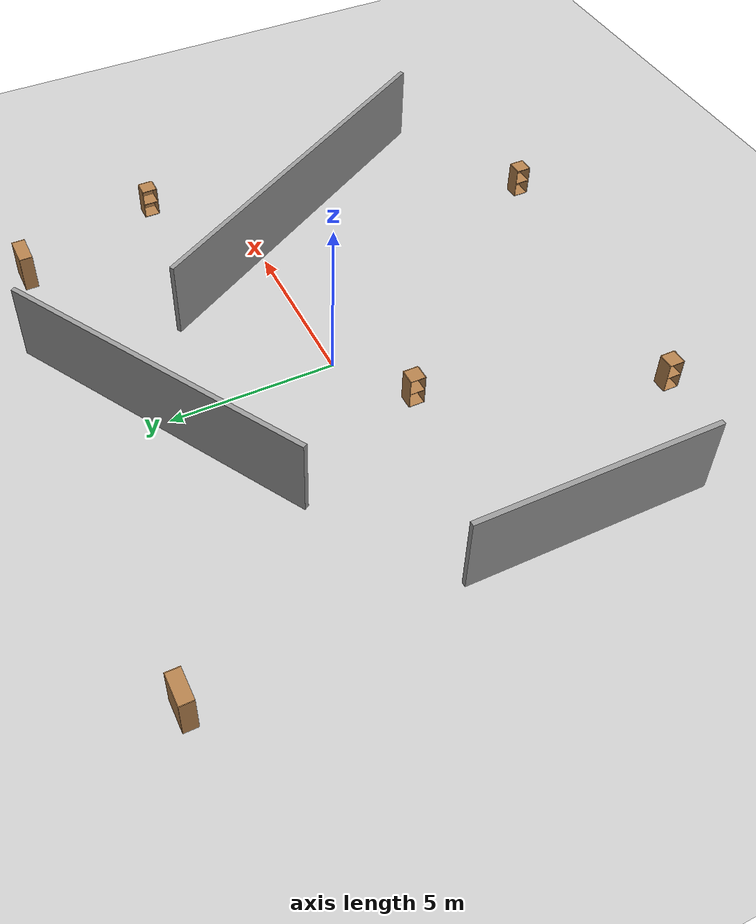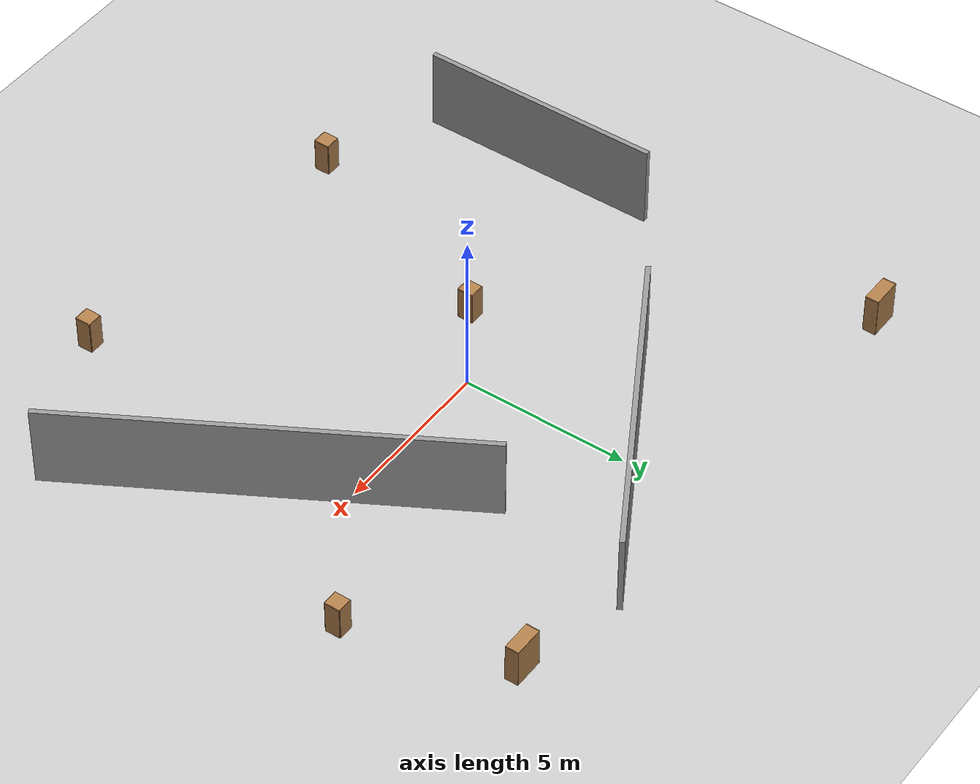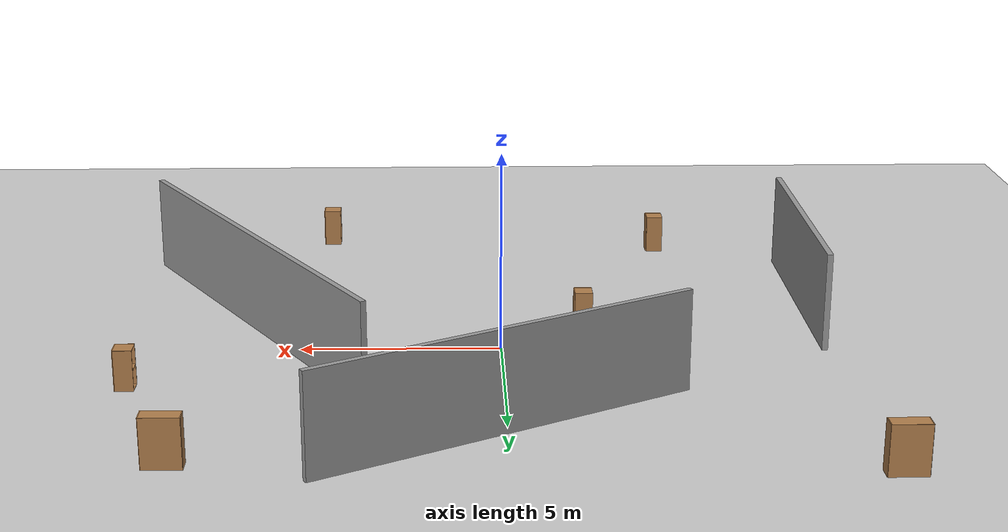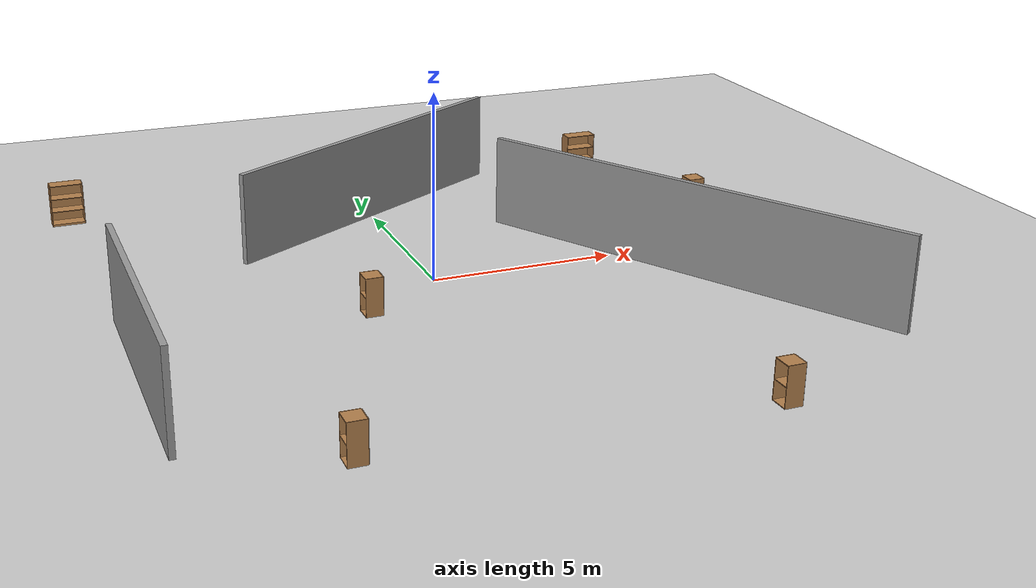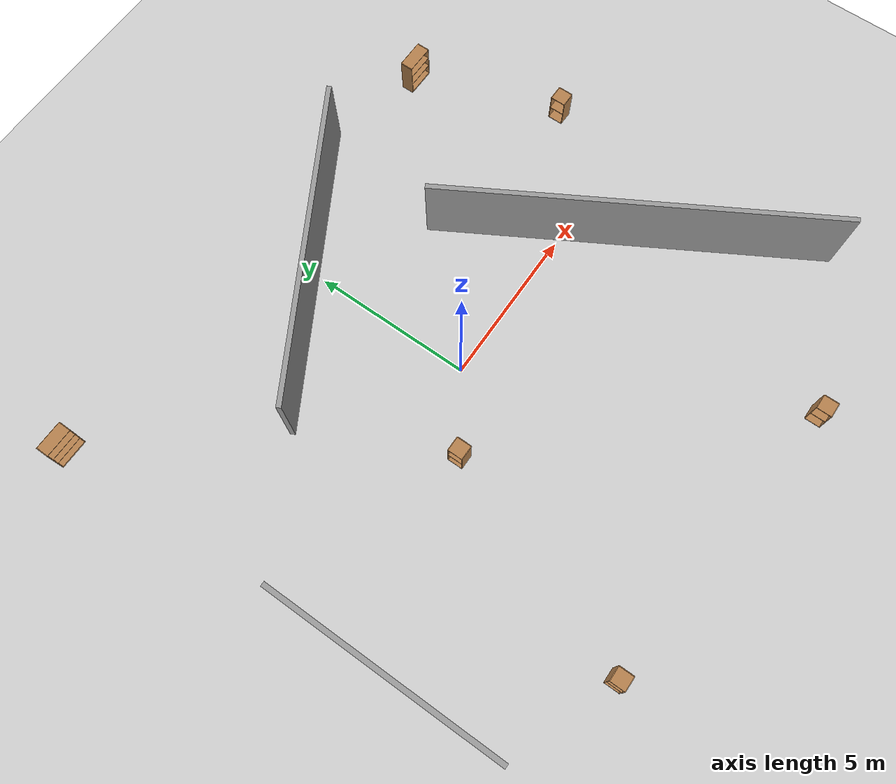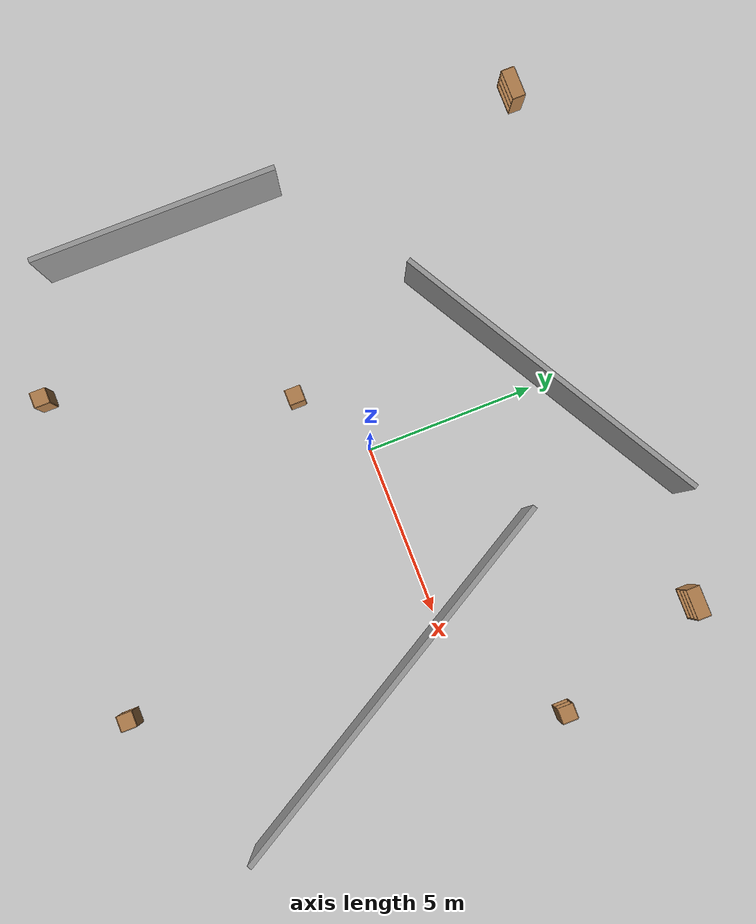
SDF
<sdf version="1.6">
 <world name="default">
  <light name="sun" type="directional">
   <pose>0 0 10 0 -0 0</pose>
   <diffuse>0.8 0.8 0.8 1</diffuse>
   <specular>0.2 0.2 0.2 1</specular>
   <attenuation>
    <range>1000</range>
    <constant>0.9</constant>
    <linear>0.01</linear>
    <quadratic>0.001</quadratic>
   </attenuation>
   <direction>-0.5 0.1 -0.9</direction>
  </light>
  <model name="ground_plane">
   <static>1</static>
   <link name="link">
    <collision name="collision">
     <geometry><plane><normal>0 0 1</normal><size>100 100</size></plane></geometry>
     <surface><friction><ode><mu>100</mu><mu2>50</mu2></ode></friction></surface>
    </collision>
    <visual name="visual">
     <cast_shadows>0</cast_shadows>
     <geometry><plane><normal>0 0 1</normal><size>100 100</size></plane></geometry>
     <material>
      <script><uri>file://media/materials/scripts/gazebo.material</uri><name>Gazebo/Grey</name></script>
     </material>
    </visual>
   </link>
  </model>
  <gravity>0 0 -9.8</gravity>
  <magnetic_field>6e-06 2.3e-05 -4.2e-05</magnetic_field>
  <atmosphere type="adiabatic"/>
  <physics name="default_physics" default="0" type="ode">
   <max_step_size>0.001</max_step_size>
   <real_time_factor>1</real_time_factor>
   <real_time_update_rate>1000</real_time_update_rate>
  </physics>
  <scene><ambient>0.4 0.4 0.4 1</ambient><background>0.7 0.7 0.7 1</background><shadows>1</shadows></scene>
  <audio><device>default</device></audio>
  <spherical_coordinates>
   <surface_model>EARTH_WGS84</surface_model>
   <latitude_deg>0</latitude_deg>
   <longitude_deg>0</longitude_deg>
   <elevation>0</elevation>
   <heading_deg>0</heading_deg>
  </spherical_coordinates>
  <model name="room7">
   <pose>0.642424 0.37952 0 0 -0 0</pose>
   <link name="Wall_0">
    <collision name="Wall_0_Collision">
     <geometry><box><size>10 0.15 2.5</size></box></geometry>
     <pose>0 0 1.25 0 -0 0</pose>
    </collision>
    <visual name="Wall_0_Visual">
     <pose>0 0 1.25 0 -0 0</pose>
     <geometry><box><size>10 0.15 2.5</size></box></geometry>
     <material>
      <script><uri>file://media/materials/scripts/gazebo.material</uri><name>Gazebo/Grey</name></script>
      <ambient>1 1 1 1</ambient>
     </material>
     <meta><layer>0</layer></meta>
    </visual>
    <pose>-0.625696 4.92862 0 0 -0 0.523599</pose>
   </link>
   <link name="Wall_2">
    <collision name="Wall_2_Collision">
     <geometry><box><size>7.25 0.15 2.5</size></box></geometry>
     <pose>0 0 1.25 0 -0 0</pose>
    </collision>
    <visual name="Wall_2_Visual">
     <pose>0 0 1.25 0 -0 0</pose>
     <geometry><box><size>7.25 0.15 2.5</size></box></geometry>
     <material>
      <script><uri>file://media/materials/scripts/gazebo.material</uri><name>Gazebo/Grey</name></script>
      <ambient>1 1 1 1</ambient>
     </material>
     <meta><layer>0</layer></meta>
    </visual>
    <pose>-8.7229 -3.70024 0 0 -0 -1.5708</pose>
   </link>
   <link name="Wall_5">
    <collision name="Wall_5_Collision">
     <geometry><box><size>12.25 0.15 2.5</size></box></geometry>
     <pose>0 0 1.25 0 -0 0</pose>
    </collision>
    <visual name="Wall_5_Visual">
     <pose>0 0 1.25 0 -0 0</pose>
     <geometry><box><size>12.25 0.15 2.5</size></box></geometry>
     <material>
      <script><uri>file://media/materials/scripts/gazebo.material</uri><name>Gazebo/Grey</name></script>
      <ambient>1 1 1 1</ambient>
     </material>
     <meta><layer>0</layer></meta>
    </visual>
    <pose>5.67045 -2.15167 0 0 -0 2.0944</pose>
   </link>
   <static>1</static>
  </model>
  <model name="bookshelf">
   <static>1</static>
   <link name="link">
    <inertial><mass>1</mass></inertial>
    <collision name="back">
     <pose>0 0.005 0.6 0 -0 0</pose>
     <geometry><box><size>0.9 0.01 1.2</size></box></geometry>
    </collision>
    <visual name="visual1">
     <pose>0 0.005 0.6 0 -0 0</pose>
     <geometry><box><size>0.9 0.01 1.2</size></box></geometry>
     <material>
      <script><uri>file://media/materials/scripts/gazebo.material</uri><name>Gazebo/Wood</name></script>
     </material>
    </visual>
    <collision name="left_side">
     <pose>0.45 -0.195 0.6 0 -0 0</pose>
     <geometry><box><size>0.02 0.4 1.2</size></box></geometry>
    </collision>
    <visual name="visual2">
     <pose>0.45 -0.195 0.6 0 -0 0</pose>
     <geometry><box><size>0.02 0.4 1.2</size></box></geometry>
     <material>
      <script><uri>file://media/materials/scripts/gazebo.material</uri><name>Gazebo/Wood</name></script>
     </material>
    </visual>
    <collision name="right_side">
     <pose>-0.45 -0.195 0.6 0 -0 0</pose>
     <geometry><box><size>0.02 0.4 1.2</size></box></geometry>
    </collision>
    <visual name="visual3">
     <pose>-0.45 -0.195 0.6 0 -0 0</pose>
     <geometry><box><size>0.02 0.4 1.2</size></box></geometry>
     <material>
      <script><uri>file://media/materials/scripts/gazebo.material</uri><name>Gazebo/Wood</name></script>
     </material>
    </visual>
    <collision name="bottom">
     <pose>0 -0.195 0.03 0 -0 0</pose>
     <geometry><box><size>0.88 0.4 0.06</size></box></geometry>
    </collision>
    <visual name="visual4">
     <pose>0 -0.195 0.03 0 -0 0</pose>
     <geometry><box><size>0.88 0.4 0.06</size></box></geometry>
     <material>
      <script><uri>file://media/materials/scripts/gazebo.material</uri><name>Gazebo/Wood</name></script>
     </material>
    </visual>
    <collision name="top">
     <pose>0 -0.195 1.19 0 -0 0</pose>
     <geometry><box><size>0.88 0.4 0.02</size></box></geometry>
    </collision>
    <visual name="visual5">
     <pose>0 -0.195 1.19 0 -0 0</pose>
     <geometry><box><size>0.88 0.4 0.02</size></box></geometry>
     <material>
      <script><uri>file://media/materials/scripts/gazebo.material</uri><name>Gazebo/Wood</name></script>
     </material>
    </visual>
    <collision name="low_shelf">
     <pose>0 -0.195 0.43 0 -0 0</pose>
     <geometry><box><size>0.88 0.4 0.02</size></box></geometry>
    </collision>
    <visual name="visual6">
     <pose>0 -0.195 0.43 0 -0 0</pose>
     <geometry><box><size>0.88 0.4 0.02</size></box></geometry>
     <material>
      <script><uri>file://media/materials/scripts/gazebo.material</uri><name>Gazebo/Wood</name></script>
     </material>
    </visual>
    <collision name="high_shelf">
     <pose>0 -0.195 0.8 0 -0 0</pose>
     <geometry><box><size>0.88 0.4 0.02</size></box></geometry>
    </collision>
    <visual name="visual7">
     <pose>0 -0.195 0.8 0 -0 0</pose>
     <geometry><box><size>0.88 0.4 0.02</size></box></geometry>
     <material>
      <script><uri>file://media/materials/scripts/gazebo.material</uri><name>Gazebo/Wood</name></script>
     </material>
    </visual>
   </link>
   <pose>7.41706 7.16134 0 0 -0 0</pose>
  </model>
  <model name="bookshelf_0">
   <static>1</static>
   <link name="link">
    <inertial><mass>1</mass></inertial>
    <collision name="back">
     <pose>0 0.005 0.6 0 -0 0</pose>
     <geometry><box><size>0.9 0.01 1.2</size></box></geometry>
    </collision>
    <visual name="visual1">
     <pose>0 0.005 0.6 0 -0 0</pose>
     <geometry><box><size>0.9 0.01 1.2</size></box></geometry>
     <material>
      <script><uri>file://media/materials/scripts/gazebo.material</uri><name>Gazebo/Wood</name></script>
     </material>
    </visual>
    <collision name="left_side">
     <pose>0.45 -0.195 0.6 0 -0 0</pose>
     <geometry><box><size>0.02 0.4 1.2</size></box></geometry>
    </collision>
    <visual name="visual2">
     <pose>0.45 -0.195 0.6 0 -0 0</pose>
     <geometry><box><size>0.02 0.4 1.2</size></box></geometry>
     <material>
      <script><uri>file://media/materials/scripts/gazebo.material</uri><name>Gazebo/Wood</name></script>
     </material>
    </visual>
    <collision name="right_side">
     <pose>-0.45 -0.195 0.6 0 -0 0</pose>
     <geometry><box><size>0.02 0.4 1.2</size></box></geometry>
    </collision>
    <visual name="visual3">
     <pose>-0.45 -0.195 0.6 0 -0 0</pose>
     <geometry><box><size>0.02 0.4 1.2</size></box></geometry>
     <material>
      <script><uri>file://media/materials/scripts/gazebo.material</uri><name>Gazebo/Wood</name></script>
     </material>
    </visual>
    <collision name="bottom">
     <pose>0 -0.195 0.03 0 -0 0</pose>
     <geometry><box><size>0.88 0.4 0.06</size></box></geometry>
    </collision>
    <visual name="visual4">
     <pose>0 -0.195 0.03 0 -0 0</pose>
     <geometry><box><size>0.88 0.4 0.06</size></box></geometry>
     <material>
      <script><uri>file://media/materials/scripts/gazebo.material</uri><name>Gazebo/Wood</name></script>
     </material>
    </visual>
    <collision name="top">
     <pose>0 -0.195 1.19 0 -0 0</pose>
     <geometry><box><size>0.88 0.4 0.02</size></box></geometry>
    </collision>
    <visual name="visual5">
     <pose>0 -0.195 1.19 0 -0 0</pose>
     <geometry><box><size>0.88 0.4 0.02</size></box></geometry>
     <material>
      <script><uri>file://media/materials/scripts/gazebo.material</uri><name>Gazebo/Wood</name></script>
     </material>
    </visual>
    <collision name="low_shelf">
     <pose>0 -0.195 0.43 0 -0 0</pose>
     <geometry><box><size>0.88 0.4 0.02</size></box></geometry>
    </collision>
    <visual name="visual6">
     <pose>0 -0.195 0.43 0 -0 0</pose>
     <geometry><box><size>0.88 0.4 0.02</size></box></geometry>
     <material>
      <script><uri>file://media/materials/scripts/gazebo.material</uri><name>Gazebo/Wood</name></script>
     </material>
    </visual>
    <collision name="high_shelf">
     <pose>0 -0.195 0.8 0 -0 0</pose>
     <geometry><box><size>0.88 0.4 0.02</size></box></geometry>
    </collision>
    <visual name="visual7">
     <pose>0 -0.195 0.8 0 -0 0</pose>
     <geometry><box><size>0.88 0.4 0.02</size></box></geometry>
     <material>
      <script><uri>file://media/materials/scripts/gazebo.material</uri><name>Gazebo/Wood</name></script>
     </material>
    </visual>
   </link>
   <pose>-8.32761 7.88049 0 0 -0 0</pose>
  </model>
  <model name="cabinet">
   <static>1</static>
   <link name="cabinet_bottom_plate">
    <inertial>
     <pose>0 0 -1 0 -0 0</pose>
     <inertia><ixx>2.05</ixx><ixy>0</ixy><ixz>0</ixz><iyy>2.05</iyy><iyz>0</iyz><izz>2.05</izz></inertia>
     <mass>25</mass>
    </inertial>
    <collision name="cabinet_bottom_plate_geom">
     <pose>0 0 0.01 0 -0 0</pose>
     <geometry><box><size>0.45 0.45 0.02</size></box></geometry>
    </collision>
    <visual name="cabinet_bottom_plate_geom_visual">
     <pose>0 0 0.01 0 -0 0</pose>
     <geometry><box><size>0.45 0.45 0.02</size></box></geometry>
     <material>
      <script><uri>file://media/materials/scripts/gazebo.material</uri><name>Gazebo/Wood</name></script>
     </material>
    </visual>
    <collision name="cabinet_bottom_plate_geom_cabinet_back_plate">
     <pose>0.235 0 0.51 0 -0 0</pose>
     <geometry><box><size>0.02 0.45 1.02</size></box></geometry>
    </collision>
    <visual name="cabinet_bottom_plate_geom_cabinet_back_plate_visual">
     <pose>0.235 0 0.51 0 -0 0</pose>
     <geometry><box><size>0.02 0.45 1.02</size></box></geometry>
     <material>
      <script><uri>file://media/materials/scripts/gazebo.material</uri><name>Gazebo/Wood</name></script>
     </material>
    </visual>
    <collision name="cabinet_bottom_plate_geom_cabinet_left_plate">
     <pose>0 0.235 0.51 0 -0 0</pose>
     <geometry><box><size>0.45 0.02 1.02</size></box></geometry>
    </collision>
    <visual name="cabinet_bottom_plate_geom_cabinet_left_plate_visual">
     <pose>0 0.235 0.51 0 -0 0</pose>
     <geometry><box><size>0.45 0.02 1.02</size></box></geometry>
     <material>
      <script><uri>file://media/materials/scripts/gazebo.material</uri><name>Gazebo/Wood</name></script>
     </material>
    </visual>
    <collision name="cabinet_bottom_plate_geom_cabinet_middle_plate">
     <pose>0 0 0.51 0 -0 0</pose>
     <geometry><box><size>0.45 0.45 0.02</size></box></geometry>
    </collision>
    <visual name="cabinet_bottom_plate_geom_cabinet_middle_plate_visual">
     <pose>0 0 0.51 0 -0 0</pose>
     <geometry><box><size>0.45 0.45 0.02</size></box></geometry>
     <material>
      <script><uri>file://media/materials/scripts/gazebo.material</uri><name>Gazebo/Wood</name></script>
     </material>
    </visual>
    <collision name="cabinet_bottom_plate_geom_cabinet_right_plate">
     <pose>0 -0.235 0.51 0 -0 0</pose>
     <geometry><box><size>0.45 0.02 1.02</size></box></geometry>
    </collision>
    <visual name="cabinet_bottom_plate_geom_cabinet_right_plate_visual">
     <pose>0 -0.235 0.51 0 -0 0</pose>
     <geometry><box><size>0.45 0.02 1.02</size></box></geometry>
     <material>
      <script><uri>file://media/materials/scripts/gazebo.material</uri><name>Gazebo/Wood</name></script>
     </material>
    </visual>
    <collision name="cabinet_bottom_plate_geom_cabinet_top_plate">
     <pose>0 0 1.01 0 -0 0</pose>
     <geometry><box><size>0.45 0.45 0.02</size></box></geometry>
    </collision>
    <visual name="cabinet_bottom_plate_geom_cabinet_top_plate_visual">
     <pose>0 0 1.01 0 -0 0</pose>
     <geometry><box><size>0.45 0.45 0.02</size></box></geometry>
     <material>
      <script><uri>file://media/materials/scripts/gazebo.material</uri><name>Gazebo/Wood</name></script>
     </material>
    </visual>
   </link>
   <pose>8.95242 2.4355 0 0 -0 0</pose>
  </model>
  <model name="cabinet_0">
   <static>1</static>
   <link name="cabinet_bottom_plate">
    <inertial>
     <pose>0 0 -1 0 -0 0</pose>
     <inertia><ixx>2.05</ixx><ixy>0</ixy><ixz>0</ixz><iyy>2.05</iyy><iyz>0</iyz><izz>2.05</izz></inertia>
     <mass>25</mass>
    </inertial>
    <collision name="cabinet_bottom_plate_geom">
     <pose>0 0 0.01 0 -0 0</pose>
     <geometry><box><size>0.45 0.45 0.02</size></box></geometry>
    </collision>
    <visual name="cabinet_bottom_plate_geom_visual">
     <pose>0 0 0.01 0 -0 0</pose>
     <geometry><box><size>0.45 0.45 0.02</size></box></geometry>
     <material>
      <script><uri>file://media/materials/scripts/gazebo.material</uri><name>Gazebo/Wood</name></script>
     </material>
    </visual>
    <collision name="cabinet_bottom_plate_geom_cabinet_back_plate">
     <pose>0.235 0 0.51 0 -0 0</pose>
     <geometry><box><size>0.02 0.45 1.02</size></box></geometry>
    </collision>
    <visual name="cabinet_bottom_plate_geom_cabinet_back_plate_visual">
     <pose>0.235 0 0.51 0 -0 0</pose>
     <geometry><box><size>0.02 0.45 1.02</size></box></geometry>
     <material>
      <script><uri>file://media/materials/scripts/gazebo.material</uri><name>Gazebo/Wood</name></script>
     </material>
    </visual>
    <collision name="cabinet_bottom_plate_geom_cabinet_left_plate">
     <pose>0 0.235 0.51 0 -0 0</pose>
     <geometry><box><size>0.45 0.02 1.02</size></box></geometry>
    </collision>
    <visual name="cabinet_bottom_plate_geom_cabinet_left_plate_visual">
     <pose>0 0.235 0.51 0 -0 0</pose>
     <geometry><box><size>0.45 0.02 1.02</size></box></geometry>
     <material>
      <script><uri>file://media/materials/scripts/gazebo.material</uri><name>Gazebo/Wood</name></script>
     </material>
    </visual>
    <collision name="cabinet_bottom_plate_geom_cabinet_middle_plate">
     <pose>0 0 0.51 0 -0 0</pose>
     <geometry><box><size>0.45 0.45 0.02</size></box></geometry>
    </collision>
    <visual name="cabinet_bottom_plate_geom_cabinet_middle_plate_visual">
     <pose>0 0 0.51 0 -0 0</pose>
     <geometry><box><size>0.45 0.45 0.02</size></box></geometry>
     <material>
      <script><uri>file://media/materials/scripts/gazebo.material</uri><name>Gazebo/Wood</name></script>
     </material>
    </visual>
    <collision name="cabinet_bottom_plate_geom_cabinet_right_plate">
     <pose>0 -0.235 0.51 0 -0 0</pose>
     <geometry><box><size>0.45 0.02 1.02</size></box></geometry>
    </collision>
    <visual name="cabinet_bottom_plate_geom_cabinet_right_plate_visual">
     <pose>0 -0.235 0.51 0 -0 0</pose>
     <geometry><box><size>0.45 0.02 1.02</size></box></geometry>
     <material>
      <script><uri>file://media/materials/scripts/gazebo.material</uri><name>Gazebo/Wood</name></script>
     </material>
    </visual>
    <collision name="cabinet_bottom_plate_geom_cabinet_top_plate">
     <pose>0 0 1.01 0 -0 0</pose>
     <geometry><box><size>0.45 0.45 0.02</size></box></geometry>
    </collision>
    <visual name="cabinet_bottom_plate_geom_cabinet_top_plate_visual">
     <pose>0 0 1.01 0 -0 0</pose>
     <geometry><box><size>0.45 0.45 0.02</size></box></geometry>
     <material>
      <script><uri>file://media/materials/scripts/gazebo.material</uri><name>Gazebo/Wood</name></script>
     </material>
    </visual>
   </link>
   <pose>-4.71811 -8.25664 0 0 -0 0</pose>
  </model>
  <model name="cabinet_1">
   <static>1</static>
   <link name="cabinet_bottom_plate">
    <inertial>
     <pose>0 0 -1 0 -0 0</pose>
     <inertia><ixx>2.05</ixx><ixy>0</ixy><ixz>0</ixz><iyy>2.05</iyy><iyz>0</iyz><izz>2.05</izz></inertia>
     <mass>25</mass>
    </inertial>
    <collision name="cabinet_bottom_plate_geom">
     <pose>0 0 0.01 0 -0 0</pose>
     <geometry><box><size>0.45 0.45 0.02</size></box></geometry>
    </collision>
    <visual name="cabinet_bottom_plate_geom_visual">
     <pose>0 0 0.01 0 -0 0</pose>
     <geometry><box><size>0.45 0.45 0.02</size></box></geometry>
     <material>
      <script><uri>file://media/materials/scripts/gazebo.material</uri><name>Gazebo/Wood</name></script>
     </material>
    </visual>
    <collision name="cabinet_bottom_plate_geom_cabinet_back_plate">
     <pose>0.235 0 0.51 0 -0 0</pose>
     <geometry><box><size>0.02 0.45 1.02</size></box></geometry>
    </collision>
    <visual name="cabinet_bottom_plate_geom_cabinet_back_plate_visual">
     <pose>0.235 0 0.51 0 -0 0</pose>
     <geometry><box><size>0.02 0.45 1.02</size></box></geometry>
     <material>
      <script><uri>file://media/materials/scripts/gazebo.material</uri><name>Gazebo/Wood</name></script>
     </material>
    </visual>
    <collision name="cabinet_bottom_plate_geom_cabinet_left_plate">
     <pose>0 0.235 0.51 0 -0 0</pose>
     <geometry><box><size>0.45 0.02 1.02</size></box></geometry>
    </collision>
    <visual name="cabinet_bottom_plate_geom_cabinet_left_plate_visual">
     <pose>0 0.235 0.51 0 -0 0</pose>
     <geometry><box><size>0.45 0.02 1.02</size></box></geometry>
     <material>
      <script><uri>file://media/materials/scripts/gazebo.material</uri><name>Gazebo/Wood</name></script>
     </material>
    </visual>
    <collision name="cabinet_bottom_plate_geom_cabinet_middle_plate">
     <pose>0 0 0.51 0 -0 0</pose>
     <geometry><box><size>0.45 0.45 0.02</size></box></geometry>
    </collision>
    <visual name="cabinet_bottom_plate_geom_cabinet_middle_plate_visual">
     <pose>0 0 0.51 0 -0 0</pose>
     <geometry><box><size>0.45 0.45 0.02</size></box></geometry>
     <material>
      <script><uri>file://media/materials/scripts/gazebo.material</uri><name>Gazebo/Wood</name></script>
     </material>
    </visual>
    <collision name="cabinet_bottom_plate_geom_cabinet_right_plate">
     <pose>0 -0.235 0.51 0 -0 0</pose>
     <geometry><box><size>0.45 0.02 1.02</size></box></geometry>
    </collision>
    <visual name="cabinet_bottom_plate_geom_cabinet_right_plate_visual">
     <pose>0 -0.235 0.51 0 -0 0</pose>
     <geometry><box><size>0.45 0.02 1.02</size></box></geometry>
     <material>
      <script><uri>file://media/materials/scripts/gazebo.material</uri><name>Gazebo/Wood</name></script>
     </material>
    </visual>
    <collision name="cabinet_bottom_plate_geom_cabinet_top_plate">
     <pose>0 0 1.01 0 -0 0</pose>
     <geometry><box><size>0.45 0.45 0.02</size></box></geometry>
    </collision>
    <visual name="cabinet_bottom_plate_geom_cabinet_top_plate_visual">
     <pose>0 0 1.01 0 -0 0</pose>
     <geometry><box><size>0.45 0.45 0.02</size></box></geometry>
     <material>
      <script><uri>file://media/materials/scripts/gazebo.material</uri><name>Gazebo/Wood</name></script>
     </material>
    </visual>
   </link>
   <pose>4.69977 -9.10999 0 0 -0 0</pose>
  </model>
  <model name="cabinet_2">
   <static>1</static>
   <link name="cabinet_bottom_plate">
    <inertial>
     <pose>0 0 -1 0 -0 0</pose>
     <inertia><ixx>2.05</ixx><ixy>0</ixy><ixz>0</ixz><iyy>2.05</iyy><iyz>0</iyz><izz>2.05</izz></inertia>
     <mass>25</mass>
    </inertial>
    <collision name="cabinet_bottom_plate_geom">
     <pose>0 0 0.01 0 -0 0</pose>
     <geometry><box><size>0.45 0.45 0.02</size></box></geometry>
    </collision>
    <visual name="cabinet_bottom_plate_geom_visual">
     <pose>0 0 0.01 0 -0 0</pose>
     <geometry><box><size>0.45 0.45 0.02</size></box></geometry>
     <material>
      <script><uri>file://media/materials/scripts/gazebo.material</uri><name>Gazebo/Wood</name></script>
     </material>
    </visual>
    <collision name="cabinet_bottom_plate_geom_cabinet_back_plate">
     <pose>0.235 0 0.51 0 -0 0</pose>
     <geometry><box><size>0.02 0.45 1.02</size></box></geometry>
    </collision>
    <visual name="cabinet_bottom_plate_geom_cabinet_back_plate_visual">
     <pose>0.235 0 0.51 0 -0 0</pose>
     <geometry><box><size>0.02 0.45 1.02</size></box></geometry>
     <material>
      <script><uri>file://media/materials/scripts/gazebo.material</uri><name>Gazebo/Wood</name></script>
     </material>
    </visual>
    <collision name="cabinet_bottom_plate_geom_cabinet_left_plate">
     <pose>0 0.235 0.51 0 -0 0</pose>
     <geometry><box><size>0.45 0.02 1.02</size></box></geometry>
    </collision>
    <visual name="cabinet_bottom_plate_geom_cabinet_left_plate_visual">
     <pose>0 0.235 0.51 0 -0 0</pose>
     <geometry><box><size>0.45 0.02 1.02</size></box></geometry>
     <material>
      <script><uri>file://media/materials/scripts/gazebo.material</uri><name>Gazebo/Wood</name></script>
     </material>
    </visual>
    <collision name="cabinet_bottom_plate_geom_cabinet_middle_plate">
     <pose>0 0 0.51 0 -0 0</pose>
     <geometry><box><size>0.45 0.45 0.02</size></box></geometry>
    </collision>
    <visual name="cabinet_bottom_plate_geom_cabinet_middle_plate_visual">
     <pose>0 0 0.51 0 -0 0</pose>
     <geometry><box><size>0.45 0.45 0.02</size></box></geometry>
     <material>
      <script><uri>file://media/materials/scripts/gazebo.material</uri><name>Gazebo/Wood</name></script>
     </material>
    </visual>
    <collision name="cabinet_bottom_plate_geom_cabinet_right_plate">
     <pose>0 -0.235 0.51 0 -0 0</pose>
     <geometry><box><size>0.45 0.02 1.02</size></box></geometry>
    </collision>
    <visual name="cabinet_bottom_plate_geom_cabinet_right_plate_visual">
     <pose>0 -0.235 0.51 0 -0 0</pose>
     <geometry><box><size>0.45 0.02 1.02</size></box></geometry>
     <material>
      <script><uri>file://media/materials/scripts/gazebo.material</uri><name>Gazebo/Wood</name></script>
     </material>
    </visual>
    <collision name="cabinet_bottom_plate_geom_cabinet_top_plate">
     <pose>0 0 1.01 0 -0 0</pose>
     <geometry><box><size>0.45 0.45 0.02</size></box></geometry>
    </collision>
    <visual name="cabinet_bottom_plate_geom_cabinet_top_plate_visual">
     <pose>0 0 1.01 0 -0 0</pose>
     <geometry><box><size>0.45 0.45 0.02</size></box></geometry>
     <material>
      <script><uri>file://media/materials/scripts/gazebo.material</uri><name>Gazebo/Wood</name></script>
     </material>
    </visual>
   </link>
   <pose>-2.15563 -1.46111 0 0 -0 0</pose>
  </model>
  <plugin filename="libcollision_map_creator.so" name="collision_map_creator"/>
 </world>
</sdf>
